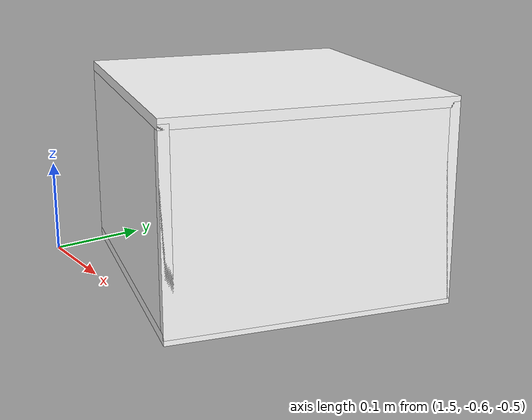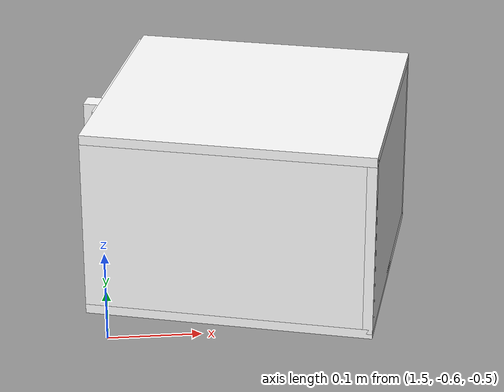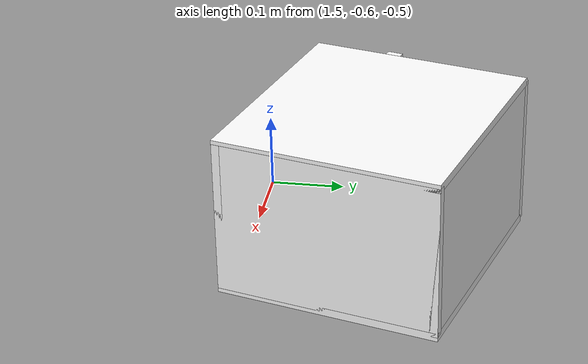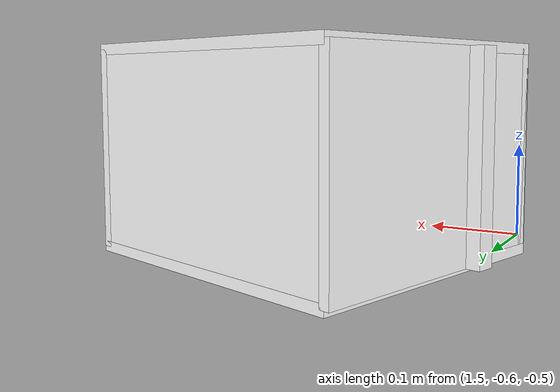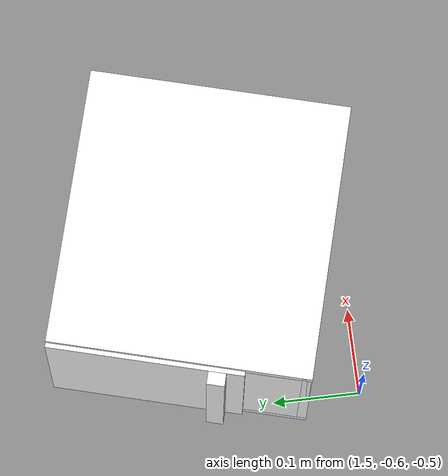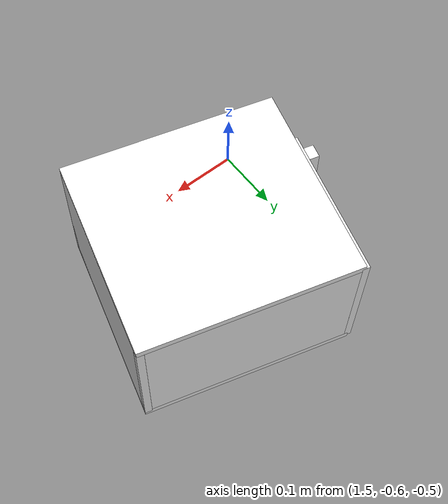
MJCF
<mujoco model="cabinet">
    <compiler angle="radian" eulerseq='zxy' />
    <option gravity = "0 0 0" />
    <option>
        <flag contact = "disable"/>
    </option>
    <statistic	extent="1.0" center="0.0 0.0 0.0"/>
    <visual>
        <map fogstart="3" fogend="5" force="0.1" znear=" 0.100000 " zfar=" 12.000000 "/>
    </visual>
    <size njmax="500" nconmax="100" />
    <actuator>
        <velocity joint="bottom_left_hinge" name="viva_revolution" kv='10'></velocity>
    </actuator>
    <asset>
        <texture builtin="flat" name="tabletex" height="32" width="32" rgb1="1 1 1" type="cube"></texture>
        <texture builtin="flat" name="objtex" height="32" width="32" rgb1="1 1 1" type="cube"></texture>
        <texture builtin="flat" name="handletex" height="32" width="32" rgb1="1 1 1" type="cube"></texture>
        <texture builtin="flat" name="wallpaper" height="32" width="32" rgb1="1 0 0" type="cube"></texture>
        <texture builtin="flat" name="kp" height="32" width="32" rgb1="1 1 1" type="cube"></texture>
        <material name="geomTable" shininess="0.03" specular="0.75" texture="tabletex"></material>
        <material name="geomObj" shininess="0.03" specular="0.75" texture="objtex"></material>
        <material name="geomHandle" shininess="0.03" specular="0.75" texture="handletex"></material>
        <material name="ax" shininess="0.03" specular="0.75" texture="wallpaper"></material>
        <material name="bg" shininess="0.03" specular="0.75" texture="wallpaper"></material>
        <material name="geomKeypad" shininess="0.03" specular="0.75" texture="kp"></material>
    </asset>
    <worldbody>
        <body name="cabinet_bottom" pos= " 1.667706 -0.434416 -0.500005 "  quat= " 0.132808 0.000000 0.000000 0.991142" >
            <inertial pos="0 0 0" mass="1" diaginertia="1 1 1" />
            <geom size= " 0.157400 0.146983 0.005364 "  type="box" material="geomObj" name="b"/>
            <body name="cabinet_left" pos= " 0.000000 -0.141618 0.100893 " >
                <inertial pos="0 0 0" mass="1" diaginertia="1 1 1" />
                <geom size= " 0.157400 0.005364 0.100893 "  type="box" material="geomObj" name="c" />
            </body>
            <body name="cabinet_right" pos= " 0.000000 0.141618 0.100893 " >
                <inertial pos="0 0 0" mass="1" diaginertia="1 1 1" />
                <geom size= " 0.157400 0.005364 0.100893 "  type="box" material="geomObj" name="d" />
            </body>
            <body name="cabinet_top" pos= " 0.000000 0.000000 0.201785 " >
                <inertial pos="0 0 0" mass="1" diaginertia="1 1 1" />
                <geom size= " 0.157400 0.146983 0.005364 "  type="box" material="geomObj" name="e"/>
            </body>
            <body name="cabinet_back" pos= " -0.152036 0.000000 0.100893 "  >
                <inertial pos="0 0 0" mass="1" diaginertia="1 1 1" />
                <geom size= " 0.005364 0.146983 0.100893 "  type="box" material="geomObj" name="f" />
            </body>
            <body name="cabinet_keypad" pos= " 0.005364 0.109237 0.100893 " >
                <inertial pos="0 0 0" mass="1" diaginertia="1 1 1" />
                <geom size= " 0.152036 0.036746 0.095528 "  type="box" material="geomKeypad" name="keypizzlemynizzle" />
            </body>
            <body name="cabinet_left_hinge" pos= " 0.157400 -0.146983 0.100893 " >
                <inertial pos= " 0.000000 0.110237 0.000000 "  mass="1" diaginertia="1 1 1" />
                <joint name="bottom_left_hinge" type="hinge" pos="0 0 0" axis="0 0 1" limited="true" range= "-2.3 0"  />
                <geom size= " 0.005364 0.110237 0.100893 "  pos= " 0.000000 0.110237 0.000000 "  type="box" material="geomObj" name="g"/>
                <body name="handle_link" pos= " 0.010000 0.190474 0.000000 " >
                    <inertial pos="0 0 0" mass="1" diaginertia="1 1 1" />
                    <geom size= " 0.010000 0.010000 0.100893 "  type="box" material="geomHandle" name="h"/>
                </body>
            </body>
        </body>
        <body name="external_camera_body_0" pos="0.0 0 0.00" >
            <camera euler="-1.57 1.57 0.0" fovy=" 54.280851 " name="external_camera_0" pos="0.0 0 0"></camera>
            <inertial pos= " 0.00 0.0 0.000000 " mass="1" diaginertia="1 1 1" />
            <joint name="cam_j" pos="0.0 0 0" axis = "1 0 0" type="free" />
        </body>
    </worldbody>
</mujoco>
